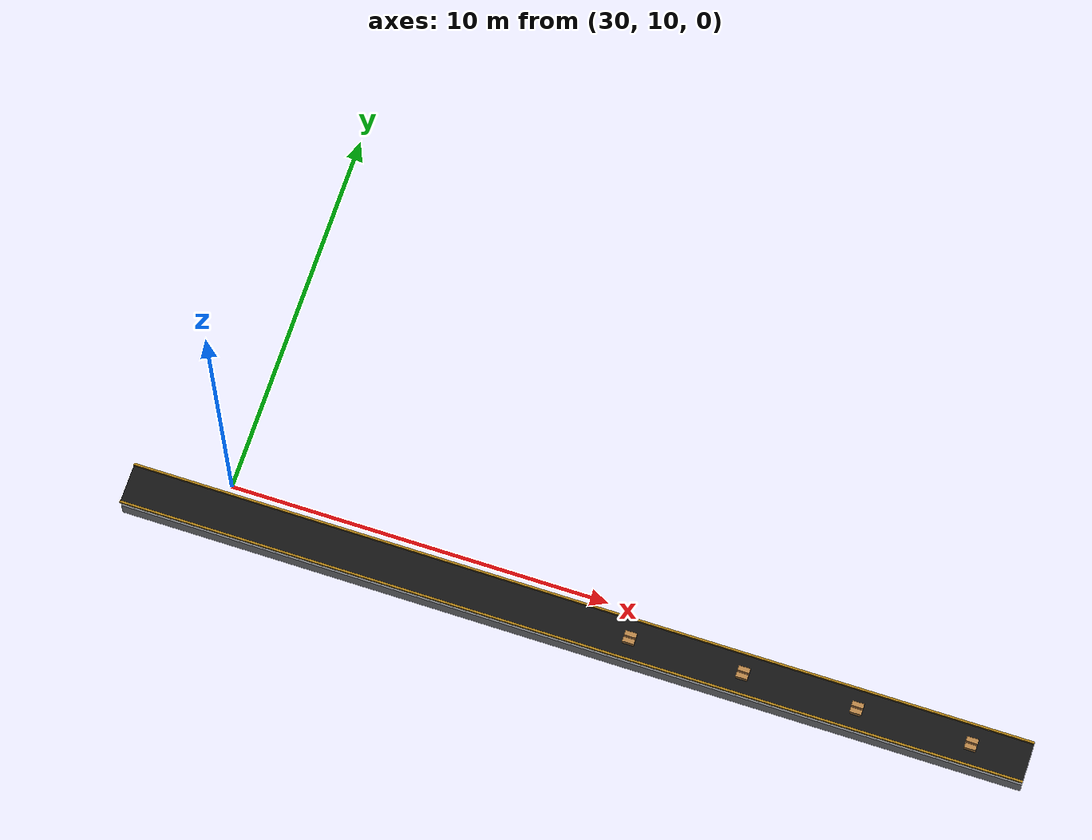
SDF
<sdf version="1.7">
 <world name="warehouse_layout2">
  <model name="ground_plane">
   <static>true</static>
   <link name="link">
    <collision name="collision">
     <geometry><plane><normal>0.0 0.0 1</normal><size>1 1</size></plane></geometry>
    </collision>
   </link>
  </model>
  <model name="outbound_belt_frame">
   <static>true</static>
   <pose>39.400000000000006 9.0 0.25 0 0 0.0</pose>
   <link name="link">
    <collision name="collision"><geometry><box><size>23.6 1.0 0.5</size></box></geometry></collision>
    <visual name="visual_base">
     <geometry><box><size>23.6 1.0 0.5</size></box></geometry>
     <material>
      <ambient>0.55 0.56 0.58 1</ambient>
      <diffuse>0.55 0.56 0.58 1</diffuse>
      <specular>0.6 0.6 0.6 1</specular>
     </material>
    </visual>
   </link>
  </model>
  <model name="outbound_belt_deck">
   <static>true</static>
   <pose>39.400000000000006 9.0 0.775 0 0 0.0</pose>
   <link name="link">
    <collision name="collision">
     <geometry><box><size>23.6 1.0 0.05</size></box></geometry>
     <surface><friction><ode><mu>1.0</mu><mu2>1.0</mu2></ode></friction></surface>
    </collision>
    <visual name="visual">
     <geometry><box><size>23.6 1.0 0.05</size></box></geometry>
     <material><ambient>0.08 0.08 0.08 1</ambient><diffuse>0.08 0.08 0.08 1</diffuse></material>
    </visual>
   </link>
  </model>
  <model name="outbound_belt_rail_left">
   <static>true</static>
   <pose>39.400000000000006 9.525 0.8400000000000001 0 0 0.0</pose>
   <link name="link">
    <visual name="visual">
     <geometry><box><size>23.6 0.05 0.08</size></box></geometry>
     <material><ambient>0.75 0.55 0.1 1</ambient><diffuse>0.75 0.55 0.1 1</diffuse></material>
    </visual>
   </link>
  </model>
  <model name="outbound_belt_rail_right">
   <static>true</static>
   <pose>39.400000000000006 8.475 0.8400000000000001 0 0 0.0</pose>
   <link name="link">
    <visual name="visual">
     <geometry><box><size>23.6 0.05 0.08</size></box></geometry>
     <material><ambient>0.75 0.55 0.1 1</ambient><diffuse>0.75 0.55 0.1 1</diffuse></material>
    </visual>
   </link>
  </model>
  <model name="outbound_belt_pkg4">
   <pose>40.87500000000001 9.0 0.895 0 0 0.0</pose>
   <link name="box_link">
    <inertial>
     <mass>0.2</mass>
     <inertia><ixx>0.001</ixx><iyy>0.001</iyy><izz>0.001</izz><ixy>0</ixy><ixz>0</ixz><iyz>0</iyz></inertia>
    </inertial>
    <visual name="visual_body">
     <geometry><box><size>0.3 0.3 0.15</size></box></geometry>
     <material><ambient>0.72 0.52 0.28 1</ambient><diffuse>0.72 0.52 0.28 1</diffuse></material>
    </visual>
    <visual name="visual_strap">
     <pose>0 0 0.076 0 0 0</pose>
     <geometry><box><size>0.3 0.045 0.002</size></box></geometry>
     <material><ambient>0.35 0.22 0.1 1</ambient><diffuse>0.35 0.22 0.1 1</diffuse></material>
    </visual>
    <collision name="collision">
     <geometry><box><size>0.3 0.3 0.15</size></box></geometry>
     <surface><friction><ode><mu>1.2</mu><mu2>1.2</mu2></ode></friction></surface>
    </collision>
   </link>
   <plugin filename="libignition-gazebo-velocity-control-system.so" name="ignition::gazebo::systems::VelocityControl">
    <link_name>box_link</link_name>
   </plugin>
  </model>
  <model name="outbound_belt_pkg5">
   <pose>43.825 9.0 0.895 0 0 0.0</pose>
   <link name="box_link">
    <inertial>
     <mass>0.2</mass>
     <inertia><ixx>0.001</ixx><iyy>0.001</iyy><izz>0.001</izz><ixy>0</ixy><ixz>0</ixz><iyz>0</iyz></inertia>
    </inertial>
    <visual name="visual_body">
     <geometry><box><size>0.3 0.3 0.15</size></box></geometry>
     <material><ambient>0.72 0.52 0.28 1</ambient><diffuse>0.72 0.52 0.28 1</diffuse></material>
    </visual>
    <visual name="visual_strap">
     <pose>0 0 0.076 0 0 0</pose>
     <geometry><box><size>0.3 0.045 0.002</size></box></geometry>
     <material><ambient>0.35 0.22 0.1 1</ambient><diffuse>0.35 0.22 0.1 1</diffuse></material>
    </visual>
    <collision name="collision">
     <geometry><box><size>0.3 0.3 0.15</size></box></geometry>
     <surface><friction><ode><mu>1.2</mu><mu2>1.2</mu2></ode></friction></surface>
    </collision>
   </link>
   <plugin filename="libignition-gazebo-velocity-control-system.so" name="ignition::gazebo::systems::VelocityControl">
    <link_name>box_link</link_name>
   </plugin>
  </model>
  <model name="outbound_belt_pkg6">
   <pose>46.775000000000006 9.0 0.895 0 0 0.0</pose>
   <link name="box_link">
    <inertial>
     <mass>0.2</mass>
     <inertia><ixx>0.001</ixx><iyy>0.001</iyy><izz>0.001</izz><ixy>0</ixy><ixz>0</ixz><iyz>0</iyz></inertia>
    </inertial>
    <visual name="visual_body">
     <geometry><box><size>0.3 0.3 0.15</size></box></geometry>
     <material><ambient>0.72 0.52 0.28 1</ambient><diffuse>0.72 0.52 0.28 1</diffuse></material>
    </visual>
    <visual name="visual_strap">
     <pose>0 0 0.076 0 0 0</pose>
     <geometry><box><size>0.3 0.045 0.002</size></box></geometry>
     <material><ambient>0.35 0.22 0.1 1</ambient><diffuse>0.35 0.22 0.1 1</diffuse></material>
    </visual>
    <collision name="collision">
     <geometry><box><size>0.3 0.3 0.15</size></box></geometry>
     <surface><friction><ode><mu>1.2</mu><mu2>1.2</mu2></ode></friction></surface>
    </collision>
   </link>
   <plugin filename="libignition-gazebo-velocity-control-system.so" name="ignition::gazebo::systems::VelocityControl">
    <link_name>box_link</link_name>
   </plugin>
  </model>
  <model name="outbound_belt_pkg7">
   <pose>49.72500000000001 9.0 0.895 0 0 0.0</pose>
   <link name="box_link">
    <inertial>
     <mass>0.2</mass>
     <inertia><ixx>0.001</ixx><iyy>0.001</iyy><izz>0.001</izz><ixy>0</ixy><ixz>0</ixz><iyz>0</iyz></inertia>
    </inertial>
    <visual name="visual_body">
     <geometry><box><size>0.3 0.3 0.15</size></box></geometry>
     <material><ambient>0.72 0.52 0.28 1</ambient><diffuse>0.72 0.52 0.28 1</diffuse></material>
    </visual>
    <visual name="visual_strap">
     <pose>0 0 0.076 0 0 0</pose>
     <geometry><box><size>0.3 0.045 0.002</size></box></geometry>
     <material><ambient>0.35 0.22 0.1 1</ambient><diffuse>0.35 0.22 0.1 1</diffuse></material>
    </visual>
    <collision name="collision">
     <geometry><box><size>0.3 0.3 0.15</size></box></geometry>
     <surface><friction><ode><mu>1.2</mu><mu2>1.2</mu2></ode></friction></surface>
    </collision>
   </link>
   <plugin filename="libignition-gazebo-velocity-control-system.so" name="ignition::gazebo::systems::VelocityControl">
    <link_name>box_link</link_name>
   </plugin>
  </model>
 </world>
</sdf>
